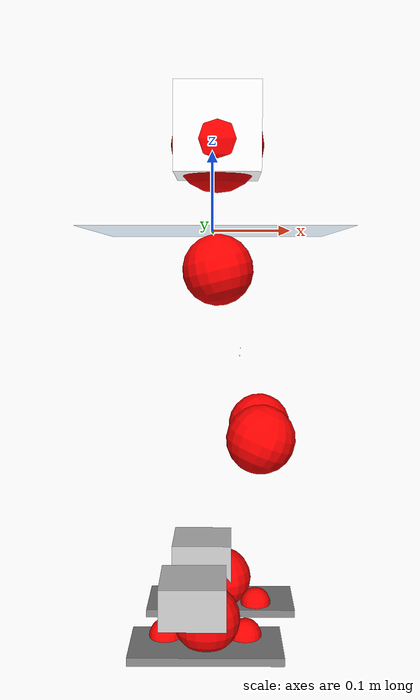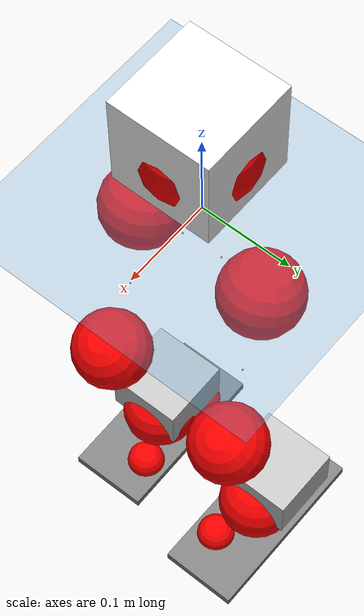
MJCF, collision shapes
<mujoco model="pi_12dof_release_v1">
  <compiler angle="radian" assetdir="assets" balanceinertia="true" inertiafromgeom="false"/>

  <option timestep="0.005" density="1.2" viscosity="2e-05"/>

  <size nkey="1"/>

  <visual>
    <quality shadowsize="8192"/>
    <map shadowclip="0.5"/>
  </visual>

  <default>
    <default class="/">
      <joint armature="0.01" damping="0.01" frictionloss="0.01"/>
      <geom contype="0" conaffinity="0" group="1" solref="-1000 -80"/>
      <site size="0.01 0.005 0.005" group="5"/>
      <general forcelimited="true" biastype="affine" gainprm="20" biasprm="0 -20 -0.5"/>
      <default class="foot">
        <geom size="0.0845 0.036 0.005" type="box" condim="6" group="4" priority="1" friction="0.9 0.2 0.2" solimp="0.015 1 0.005"/>
      </default>
      <default class="reward_collision_sphere">
        <geom group="5" rgba="1 0 0 1"/>
      </default>
    </default>
  </default>

  <asset>
    <texture type="skybox" colorspace="auto" name="//unnamed_texture_0" builtin="gradient" rgb1="0.95 0.95 0.95" rgb2="0.95 0.95 0.95" width="100" height="600"/>
    <texture type="2d" colorspace="auto" name="texplane" builtin="checker" rgb1="0.345 0.575 0.748" rgb2="0.345 0.575 0.748" markrgb="1 1 1" width="512" height="512"/>
    <material name="MatPlane" class="/" texture="texplane" texuniform="true" texrepeat="2 2" specular="0.9"/>
    <mesh name="baselink_1" class="/" file="baselink_1.STL"/>
    <mesh name="r_hip_pitch_link" class="/" file="r_hip_pitch_link.STL"/>
    <mesh name="r_hip_roll_link" class="/" file="r_hip_roll_link.STL"/>
    <mesh name="r_thigh_link" class="/" file="r_thigh_link.STL"/>
    <mesh name="r_calf_link" class="/" file="r_calf_link.STL"/>
    <mesh name="r_ankle_pitch_link" class="/" file="r_ankle_pitch_link.STL"/>
    <mesh name="r_ankle_roll_link" class="/" file="r_ankle_roll_link.STL"/>
    <mesh name="l_hip_pitch_link" class="/" file="l_hip_pitch_link.STL"/>
    <mesh name="l_hip_roll_link" class="/" file="l_hip_roll_link.STL"/>
    <mesh name="l_thigh_link" class="/" file="l_thigh_link.STL"/>
    <mesh name="l_calf_link" class="/" file="l_calf_link.STL"/>
    <mesh name="l_ankle_pitch_link" class="/" file="l_ankle_pitch_link.STL"/>
    <mesh name="l_ankle_roll_link" class="/" file="l_ankle_roll_link.STL"/>
  </asset>

  <worldbody>
    <geom name="floor" class="/" size="100 100 0.125" type="plane" group="0" material="MatPlane"/>
    <light name="toplight_shadow" class="/" pos="0 0 5" dir="0.0990148 0.0990148 -0.990148" type="directional" ambient="0.04 0.04 0.04" diffuse="0.55 0.55 0.55" specular="0.12 0.12 0.12"/>
    <light name="toplight_fill" class="/" pos="0 0 5" dir="0.0990148 0.0990148 -0.990148" type="directional" castshadow="false" ambient="0.04 0.04 0.04" diffuse="0.3 0.3 0.3" specular="0.08 0.08 0.08"/>
    <body name="trunk" pos="0.0064013 0.00248234 -0.000761923" quat="0.999998 -0.000978194 0.00165587 -0.000359877">
      <inertial pos="0.00893842 -0.00374785 0.0615607" quat="0.69438 0.0102894 0.00549256 0.719514" mass="2.77762" diaginertia="0.00254764 0.0063567 0.0348844"/>
      <joint name="//unnamed_joint_0" type="free"/>
      <geom name="//unnamed_geom_1" class="/" type="mesh" density="0" rgba="1 1 1 1" mesh="baselink_1"/>
      <geom name="//unnamed_geom_2" class="/" size="0.0541564 0.0541564 0.0541564" pos="0 0 0.124136" type="box" rgba="1 1 1 1"/>
      <geom name="//unnamed_geom_3" class="reward_collision_sphere" size="0.0595721" pos="0 0 0.108619"/>
      <site name="imu" class="/" pos="0.00491576 0.00506883 -0.00873202" size="0.0108313"/>
      <camera name="track" class="/" pos="0 -1.85863 0" quat="0.707107 0.707107 0 0" mode="trackcom"/>
      <camera name="ego_camera" class="/" pos="0.0576278 0 0.279306" quat="-0.5 -0.5 0.5 0.5"/>
      <body name="r_hip_pitch_link" pos="0.00133218 -0.019949 -0.0502415" quat="0.992402 0.00141044 -0.123009 0.00232719">
        <inertial pos="0.00801784 -0.0509588 0.000217013" quat="-0.0133622 0.709723 -0.026263 0.703864" mass="0.429343" diaginertia="2.65428e-05 6.84894e-05 0.000695397"/>
        <joint name="r_hip_pitch_joint" class="/" pos="0 0 0" axis="-0.0027181 -0.99993 -0.0115262" stiffness="0.0335361" range="-1.73775 1.27785" armature="0.0107034" damping="0.032479" frictionloss="0.00940029"/>
        <geom name="//unnamed_geom_4" class="/" type="mesh" density="0" rgba="0.75294 0.75294 0.75294 1" mesh="r_hip_pitch_link"/>
        <geom name="//unnamed_geom_5" class="/" size="0.000541564 0.000541564 0.000541564" type="box" rgba="0.75294 0.75294 0.75294 1"/>
        <body name="r_hip_roll_link" pos="5.96291e-05 -0.0492127 0.00128441" quat="1 -6.66622e-05 -3.17046e-06 3.12318e-05">
          <inertial pos="-0.00777057 0.00216159 -0.0995827" quat="0.702863 -0.0816042 -0.0905214 0.700807" mass="0.480352" diaginertia="8.69269e-05 0.000196411 0.00113956"/>
          <joint name="r_hip_roll_joint" class="/" pos="0 0 0" axis="-0.999999 -0.000954032 0.000557459" range="-0.0378062 0.487566" armature="0.0139761" damping="0.0212996" frictionloss="0.0114512"/>
          <geom name="//unnamed_geom_6" class="/" type="mesh" density="0" rgba="0.75294 0.75294 0.75294 1" mesh="r_hip_roll_link"/>
          <geom name="//unnamed_geom_7" class="/" size="0.000541564 0.000541564 0.000541564" type="box" rgba="0.75294 0.75294 0.75294 1"/>
          <geom name="//unnamed_geom_8" class="reward_collision_sphere" size="0.0433252"/>
          <body name="r_thigh_link" pos="0.000752153 0.00258549 -0.108176" quat="0.999999 -0.00048165 -0.000426842 -0.000786598">
            <inertial pos="-0.00120906 0.000580611 -0.070698" quat="0.744536 0.667211 0.0203542 0.00897236" mass="0.146882" diaginertia="3.30552e-05 6.55927e-05 0.00053678"/>
            <joint name="r_thigh_joint" class="/" pos="0 0 0" axis="0.0157539 0.00930395 -0.999833" stiffness="0.0334419" range="-0.290649 0.556931" armature="0.0134774" damping="0.0101509" frictionloss="0.0099319"/>
            <geom name="//unnamed_geom_9" class="/" type="mesh" density="0" rgba="0.75294 0.75294 0.75294 1" mesh="r_thigh_link"/>
            <geom name="//unnamed_geom_10" class="/" size="0.000541564 0.000541564 0.000541564" type="box" rgba="0.75294 0.75294 0.75294 1"/>
            <body name="r_calf_link" pos="0.000669387 -0.00719906 -0.10728" quat="0.947662 -3.33296e-05 0.319274 1.15193e-05">
              <inertial pos="-0.00386098 0.000908272 -0.108619" quat="0.999997 0.00111715 -0.00198939 -0.000761743" mass="0.89777" diaginertia="0.000888717 0.00229087 0.00155514"/>
              <joint name="r_calf_joint" class="/" pos="0 0 0" axis="-2.89803e-05 -0.999988 0.00482807" range="-1.67983 0.743334" armature="0.00641582" damping="0.031708" frictionloss="0.00686586"/>
              <geom name="//unnamed_geom_11" class="/" type="mesh" density="0" rgba="0.75294 0.75294 0.75294 1" mesh="r_calf_link"/>
              <geom name="//unnamed_geom_12" class="/" size="0.000541564 0.000541564 0.000541564" type="box" rgba="0.75294 0.75294 0.75294 1"/>
              <geom name="//unnamed_geom_13" class="reward_collision_sphere" size="0.0433252"/>
              <body name="r_ankle_pitch_link" pos="0.00301022 -0.0014349 -0.22227" quat="0.979822 -0.00230872 -0.199855 0.00149358">
                <inertial pos="0.00635218 0.0103893 -0.00174336" quat="-0.00746048 0.703934 0.00145064 0.710225" mass="0.241132" diaginertia="8.1269e-05 0.000151141 0.00111469"/>
                <joint name="r_ankle_pitch_joint" class="/" pos="0 0 0" axis="-0.0333366 -0.999374 0.0118277" stiffness="0.0309103" range="-1.22005 0.433148" armature="0.00958032" damping="0.00482855" frictionloss="0.0120493"/>
                <geom name="//unnamed_geom_14" class="/" type="mesh" density="0" rgba="0.75294 0.75294 0.75294 1" mesh="r_ankle_pitch_link"/>
                <geom name="//unnamed_geom_15" class="/" size="0.042242 0.0433252 0.0270782" type="box" rgba="0.75294 0.75294 0.75294 1"/>
                <body name="r_ankle_roll_link" pos="0.0556672 0.00367732 0.00194242" quat="1 -2.02411e-05 0.000104476 -4.09693e-06">
                  <inertial pos="-0.0188166 0.000257781 -0.0241179" quat="0.56231 0.439004 0.431026 0.552539" mass="0.639287" diaginertia="0.000271273 0.000701562 0.00246036"/>
                  <joint name="r_ankle_roll_joint" class="/" pos="0 0 0" axis="-0.999121 -0.0271985 0.0318952" stiffness="0.00688706" range="-0.19102 0.236647" armature="0.0121848" damping="0.013975" frictionloss="0.0111007"/>
                  <geom name="//unnamed_geom_16" class="/" type="mesh" density="0" rgba="0.75294 0.75294 0.75294 1" mesh="r_ankle_roll_link"/>
                  <geom name="//unnamed_geom_17" class="/" type="mesh" rgba="0.75294 0.75294 0.75294 1" mesh="r_ankle_roll_link"/>
                  <geom name="right_foot" class="foot" size="0.0979821 0.045191 0.00535097" pos="-0.0391869 0 -0.0682749"/>
                  <geom name="//unnamed_geom_19" class="reward_collision_sphere" size="0.0433252" pos="-0.0384185 0 -0.031034"/>
                  <geom name="//unnamed_geom_20" class="reward_collision_sphere" size="0.0216626" pos="0.0115256 0.0185863 -0.0620681"/>
                  <geom name="//unnamed_geom_21" class="reward_collision_sphere" size="0.0216626" pos="-0.0922044 0.0185863 -0.0620681"/>
                  <site name="right_foot" class="foot" pos="-0.0391869 0 -0.0682749" size="0.0108313"/>
                </body>
              </body>
            </body>
          </body>
        </body>
      </body>
      <body name="l_hip_pitch_link" pos="-0.00200856 0.0239337 -0.0526643" quat="0.992379 0.00335321 -0.123163 -0.00180944">
        <inertial pos="-0.00574755 0.0479553 0.000945484" quat="-0.0392472 0.704921 0.0308114 0.707528" mass="0.517379" diaginertia="3.51751e-05 7.15285e-05 0.000901694"/>
        <joint name="l_hip_pitch_joint" class="/" pos="0 0 0" axis="0.0102844 0.999937 0.0044222" range="-1.26901 1.77458" armature="0.00904406" damping="0.0204525" frictionloss="0.0110892"/>
        <geom name="//unnamed_geom_22" class="/" type="mesh" density="0" rgba="0.75294 0.75294 0.75294 1" mesh="l_hip_pitch_link"/>
        <geom name="//unnamed_geom_23" class="/" size="0.000541564 0.000541564 0.000541564" type="box" rgba="0.75294 0.75294 0.75294 1"/>
        <body name="l_hip_roll_link" pos="0.00577238 0.0526207 -0.00322042" quat="0.999996 -0.000723751 -0.00286143 0.000440333">
          <inertial pos="-0.000997619 -0.00140714 -0.0969035" quat="0.71378 -0.0684684 -0.0647346 0.694002" mass="0.518824" diaginertia="9.08478e-05 0.000200372 0.00117131"/>
          <joint name="l_hip_roll_joint" class="/" pos="0 0 0" axis="-1 -0.000211924 -0.000306038" range="-0.531661 0.0993108" armature="0.00900848" damping="0.0427352" frictionloss="0.0106884"/>
          <geom name="//unnamed_geom_24" class="/" type="mesh" density="0" rgba="0.75294 0.75294 0.75294 1" mesh="l_hip_roll_link"/>
          <geom name="//unnamed_geom_25" class="/" size="0.000541564 0.000541564 0.000541564" type="box" rgba="0.75294 0.75294 0.75294 1"/>
          <geom name="//unnamed_geom_26" class="reward_collision_sphere" size="0.0433252"/>
          <body name="l_thigh_link" pos="0.00098895 0.00181685 -0.108205" quat="1 -0.000718613 -0.000539849 0.000262111">
            <inertial pos="-0.000425779 -0.00146405 -0.0748315" quat="0.677052 0.73593 0.00204129 0.00193406" mass="0.141905" diaginertia="3.35973e-05 6.6463e-05 0.000509286"/>
            <joint name="l_thigh_joint" class="/" pos="0 0 0" axis="0.00269257 -0.00954951 -0.999951" range="-0.611511 0.245162" armature="0.0112931" damping="0.00102798" frictionloss="0.00961051"/>
            <geom name="//unnamed_geom_27" class="/" type="mesh" density="0" rgba="0.75294 0.75294 0.75294 1" mesh="l_thigh_link"/>
            <geom name="//unnamed_geom_28" class="/" size="0.000541564 0.000541564 0.000541564" type="box" rgba="0.75294 0.75294 0.75294 1"/>
            <body name="l_calf_link" pos="-0.000819349 0.00589633 -0.113065" quat="0.947357 -0.00044466 0.320178 -0.000857543">
              <inertial pos="0.000464064 -0.000146023 -0.107766" quat="0.999655 0.0044214 -0.0253911 -0.00501343" mass="1.02646" diaginertia="0.000922354 0.00235534 0.00154428"/>
              <joint name="l_calf_joint" class="/" pos="0 0 0" axis="-0.0145349 0.999837 0.0106939" range="-0.694443 1.69829" armature="0.0144412" damping="0" frictionloss="0.00725988"/>
              <geom name="//unnamed_geom_29" class="/" type="mesh" density="0" rgba="0.75294 0.75294 0.75294 1" mesh="l_calf_link"/>
              <geom name="//unnamed_geom_30" class="/" size="0.000541564 0.000541564 0.000541564" type="box" rgba="0.75294 0.75294 0.75294 1"/>
              <geom name="//unnamed_geom_31" class="reward_collision_sphere" size="0.0433252"/>
              <body name="l_ankle_pitch_link" pos="0.00150433 0.00318765 -0.213333" quat="0.980065 -1.23299e-05 -0.198678 -0.000101657">
                <inertial pos="0.00410318 -0.000517446 0.0010622" quat="-0.00371497 0.706437 0.000960067 0.707765" mass="0.221278" diaginertia="8.09042e-05 0.000152454 0.00113721"/>
                <joint name="l_ankle_pitch_joint" class="/" pos="0 0 0" axis="-0.00236274 0.999931 0.0115274" range="-0.559957 1.31076" armature="0.0105979" damping="0" frictionloss="0.011061"/>
                <geom name="//unnamed_geom_32" class="/" type="mesh" density="0" rgba="0.75294 0.75294 0.75294 1" mesh="l_ankle_pitch_link"/>
                <geom name="//unnamed_geom_33" class="/" size="0.042242 0.0433252 0.0270782" type="box" rgba="0.75294 0.75294 0.75294 1"/>
                <body name="l_ankle_roll_link" pos="0.0662191 -0.00335211 -0.00195218" quat="0.999999 -0.000987265 -0.000672531 -0.000268173">
                  <inertial pos="-0.0260109 -0.00146518 -0.0232392" quat="0.561968 0.428259 0.43572 0.557614" mass="0.649808" diaginertia="0.000325344 0.000802295 0.00269129"/>
                  <joint name="l_ankle_roll_joint" class="/" pos="0 0 0" axis="-0.999827 0.0145244 0.0116026" stiffness="0.00633134" range="-0.192032 0.14971" armature="0.0118131" damping="0.00349377" frictionloss="0.0118568"/>
                  <geom name="//unnamed_geom_34" class="/" type="mesh" density="0" rgba="0.75294 0.75294 0.75294 1" mesh="l_ankle_roll_link"/>
                  <geom name="//unnamed_geom_35" class="/" type="mesh" rgba="0.75294 0.75294 0.75294 1" mesh="l_ankle_roll_link"/>
                  <geom name="left_foot" class="foot" size="0.105871 0.0445459 0.00536311" pos="-0.0391869 0 -0.0682749"/>
                  <geom name="//unnamed_geom_37" class="reward_collision_sphere" size="0.0433252" pos="-0.0384185 0 -0.031034"/>
                  <geom name="//unnamed_geom_38" class="reward_collision_sphere" size="0.0216626" pos="0.0115256 -0.0185863 -0.0620681"/>
                  <geom name="//unnamed_geom_39" class="reward_collision_sphere" size="0.0216626" pos="-0.0922044 -0.0185863 -0.0620681"/>
                  <site name="left_foot" class="foot" pos="-0.0391869 0 -0.0682749" size="0.0108313"/>
                </body>
              </body>
            </body>
          </body>
        </body>
      </body>
    </body>
  </worldbody>

  <contact>
    <pair class="/" geom1="floor" geom2="right_foot" name="//unnamed_contact_1"/>
    <pair class="/" geom1="floor" geom2="left_foot" name="//unnamed_contact_0"/>
  </contact>

  <actuator>
    <general name="r_hip_pitch_joint" class="/" joint="r_hip_pitch_joint" forcerange="-21.0502 21.0502" gainprm="22.9118" biasprm="0 -22.9118 -0.555883"/>
    <general name="r_hip_roll_joint" class="/" joint="r_hip_roll_joint" forcerange="-23.3109 23.3109" gainprm="22.9118" biasprm="0 -22.9118 -0.555883"/>
    <general name="r_thigh_joint" class="/" joint="r_thigh_joint" forcerange="-23.2716 23.2716" gainprm="22.9118" biasprm="0 -22.9118 -0.555883"/>
    <general name="r_calf_joint" class="/" joint="r_calf_joint" forcerange="-20.7926 20.7926" gainprm="22.9118" biasprm="0 -22.9118 -0.555883"/>
    <general name="r_ankle_pitch_joint" class="/" joint="r_ankle_pitch_joint" forcerange="-24.5959 24.5959" gainprm="22.9118" biasprm="0 -22.9118 -0.555883"/>
    <general name="r_ankle_roll_joint" class="/" joint="r_ankle_roll_joint" forcerange="-20.7847 20.7847" gainprm="22.9118" biasprm="0 -22.9118 -0.555883"/>
    <general name="l_hip_pitch_joint" class="/" joint="l_hip_pitch_joint" forcerange="-21.5706 21.5706" gainprm="22.9118" biasprm="0 -22.9118 -0.555883"/>
    <general name="l_hip_roll_joint" class="/" joint="l_hip_roll_joint" forcerange="-23.2111 23.2111" gainprm="22.9118" biasprm="0 -22.9118 -0.555883"/>
    <general name="l_thigh_joint" class="/" joint="l_thigh_joint" forcerange="-23.0379 23.0379" gainprm="22.9118" biasprm="0 -22.9118 -0.555883"/>
    <general name="l_calf_joint" class="/" joint="l_calf_joint" forcerange="-16.4376 16.4376" gainprm="22.9118" biasprm="0 -22.9118 -0.555883"/>
    <general name="l_ankle_pitch_joint" class="/" joint="l_ankle_pitch_joint" forcerange="-23.1582 23.1582" gainprm="22.9118" biasprm="0 -22.9118 -0.555883"/>
    <general name="l_ankle_roll_joint" class="/" joint="l_ankle_roll_joint" forcerange="-25.3482 25.3482" gainprm="22.9118" biasprm="0 -22.9118 -0.555883"/>
  </actuator>

  <sensor>
    <gyro site="imu" name="imu_angular_velocity"/>
    <velocimeter site="imu" name="imu_linear_velocity"/>
    <framelinvel objtype="site" objname="left_foot" name="left_foot_global_linear_velocity"/>
    <framelinvel objtype="site" objname="right_foot" name="right_foot_global_linear_velocity"/>
  </sensor>

  <keyframe>
    <key name="home" qpos="0 0 0.291 1 0 0 0 0.4 0 0 -0.8 0.4 0 -0.4 0 0 0.8 -0.4 0"/>
  </keyframe>
</mujoco>
